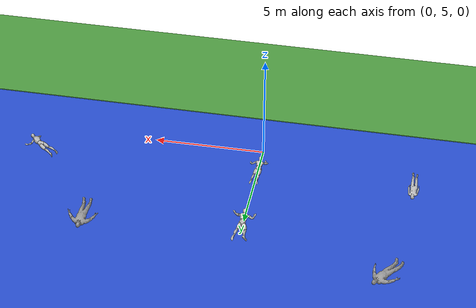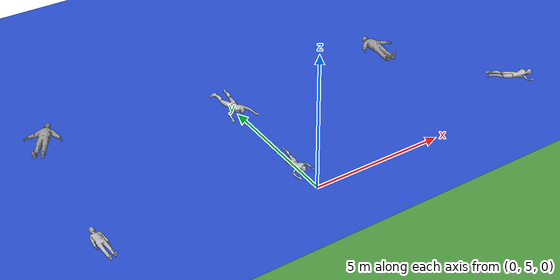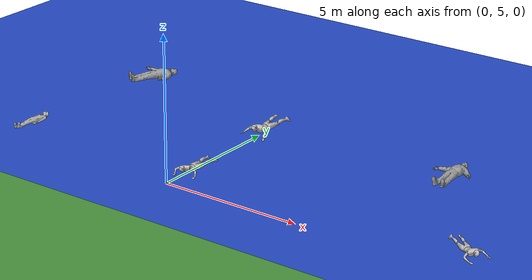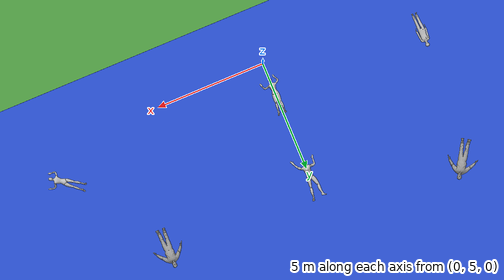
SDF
<?xml version="1.0" ?>
<sdf version="1.5">
  <world name="default">
    <gui>
      <camera name="camera">
        <pose>0 -21.555550 5.573201 0 0.169398 1.5708</pose>
      </camera>
    </gui>
    <scene>
      <grid>false</grid>
    </scene>
    <!-- A global light source -->
    <include>
      <uri>model://sun</uri>
    </include>

    <model name="water_level">
    <pose>0 52.5 0 0 0 0</pose>
    <link name="link">
      <visual name="visual">
        <geometry>
          <plane>
            <normal>0 0 1</normal>
            <size>100 100</size>
          </plane>
        </geometry>
        <material>
          <script>
            <name>Gazebo/BlueTransparent</name>
            <uri>file://media/materials/scripts/gazebo.material</uri>
          </script>
        </material>
      </visual>
    </link>
    <static>true</static>
    </model>

    <model name="grass_plane">
    <pose>0 -22.5 0 0 0 0</pose>
    <link name="link">
      <visual name="visual">
        <geometry>
          <plane>
            <normal>0 0 1</normal>
            <size>100 50</size>
          </plane>
        </geometry>
        <material>
          <script>
            <name>Gazebo/Grass</name>
            <uri>file://media/materials/scripts/gazebo.material</uri>
          </script>
        </material>
      </visual>
      <collision name="collision">
        <geometry>
          <plane>
            <normal>0 0 1</normal>
            <size>100 50</size>
          </plane>
        </geometry>
      </collision>
    </link>
    <static>true</static>
    </model>

    <physics name='default_physics' default='0' type='ode'>
      <gravity>0 0 -9.8066</gravity>
      <ode>
        <solver>
          <type>quick</type>
          <iters>10</iters>
          <sor>1.3</sor>
          <use_dynamic_moi_rescaling>0</use_dynamic_moi_rescaling>
        </solver>
        <constraints>
          <cfm>0</cfm>
          <erp>0.2</erp>
          <contact_max_correcting_vel>100</contact_max_correcting_vel>
          <contact_surface_layer>0.001</contact_surface_layer>
        </constraints>
      </ode>
      <max_step_size>0.004</max_step_size>
      <real_time_factor>1</real_time_factor>
      <real_time_update_rate>250</real_time_update_rate>
      <magnetic_field>6.0e-6 2.3e-5 -4.2e-5</magnetic_field>
    </physics>

    <include>
      <name>victim1</name>
      <pose>-7 5.5 0.1 -1.57 0 0</pose>
      <uri>model://OpScrubs</uri>
      <plugin name="victim" filename="libvictim.so">
        <drowningTime>70000</drowningTime>
      </plugin>
    </include>

    <include>
      <name>victim2</name>
      <pose>0 6.5 0 0 0 0</pose>
      <uri>model://Survivor Female</uri>
      <plugin name="victim" filename="libvictim.so">
        <drowningTime>45000</drowningTime>
      </plugin>
    </include>

    <include>
      <name>victim3</name>
      <pose>10 6.5 0 0 0 0.97</pose>
      <uri>model://Survivor Female</uri>
      <plugin name="victim" filename="libvictim.so">
        <drowningTime>48000</drowningTime>
      </plugin>
    </include>

    <include>
      <name>victim4</name>
      <pose>-7 11.5 0.1 -1.57 0 -0.57</pose>
      <uri>model://rescue_randy</uri>
      <plugin name="victim" filename="libvictim.so">
        <drowningTime>80000</drowningTime>
      </plugin>
    </include>

    <include>
      <name>victim5</name>
      <pose>0 10.5 0.1 0 0 0</pose>
      <uri>model://Survivor Male</uri>
      <plugin name="victim" filename="libvictim.so">
        <drowningTime>60000</drowningTime>
      </plugin>
    </include>

    <include>
      <name>victim6</name>
      <pose>7 10 0.1 -1.57 0 0</pose>
      <uri>model://rescue_randy</uri>
      <plugin name="victim" filename="libvictim.so">
        <drowningTime>85000</drowningTime>
      </plugin>
    </include>

    <plugin name="spawn_buoy" filename="libspawn_buoy.so"/>
  </world>
</sdf>

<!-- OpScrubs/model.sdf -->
<sdf version="1.6">
  <model name="OpScrubs">
   <static>true</static>
    <link name="body">
      <pose>0 0 0 0 0 0</pose>

      <visual name="visual">
        <geometry>
          <mesh>
            <uri>model://OpScrubs/meshes/OpScrubs.obj</uri>
          </mesh>
        </geometry>
      </visual>

      <collision name="collision">
        <geometry>
          <mesh>
            <uri>model://OpScrubs/meshes/OpScrubs_Col.obj</uri>
          </mesh>
        </geometry>
      </collision>

    </link>
  </model>
</sdf>

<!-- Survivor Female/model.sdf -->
<sdf version='1.6'>
  <model name='Survivor Female'>
    <static>true</static>
    <link name='link'>
      <collision name='collision'>
        <geometry>
          <mesh>
            <uri>model://Survivor Female/meshes/Survivor Female.dae</uri>
          </mesh>
        </geometry>
      </collision>
      <visual name='visual'>
        <geometry>
          <mesh>
            <uri>model://Survivor Female/meshes/Survivor Female.dae</uri>
          </mesh>
        </geometry>
      </visual>
    </link>
  </model>
</sdf>

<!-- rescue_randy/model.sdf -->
<sdf version="1.6">
  <model name="rescue_randy">
    <static>true</static>
    <link name="link">
      <collision name="collision">
        <geometry>
          <mesh>
            <uri>model://rescue_randy/meshes/rescue_randy.dae</uri>
          </mesh>
        </geometry>
      </collision>
      <visual name="visual">
        <geometry>
          <mesh>
            <uri>model://rescue_randy/meshes/rescue_randy.dae</uri>
          </mesh>
        </geometry>
        <material>
          <specular>1.0 1.0 1.0</specular>
          <pbr>
            <metal>
              <albedo_map>model://rescue_randy/materials/textures/rescue_randy_albedo.png</albedo_map>
              <normal_map>model://rescue_randy/materials/textures/rescue_randy_normal.png</normal_map>
              <metalness_map>model://rescue_randy/materials/textures/rescue_randy_metalness.png</metalness_map>
              <roughness_map>model://rescue_randy/materials/textures/rescue_randy_roughness.png</roughness_map>
            </metal>
          </pbr>
          <!-- fallback to classic if no PBR support-->
          <script>
            <uri>model://rescue_randy/materials/scripts</uri>
            <uri>model://rescue_randy/materials/textures</uri>
            <name>RescueRandy/Diffuse</name>
          </script>
        </material>
      </visual>
    </link>
  </model>
</sdf>

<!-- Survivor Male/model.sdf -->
<sdf version='1.6'>
  <model name='Survivor Male'>
    <static>true</static>
    <link name='link'>
      <pose>0 0 -0.837 0 0 0</pose>
      <collision name='collision'>
        <geometry>
          <mesh>
            <uri>model://Survivor Male/meshes/Survivor Male.dae</uri>
          </mesh>
        </geometry>
      </collision>
      <visual name='visual'>
        <geometry>
          <mesh>
            <uri>model://Survivor Male/meshes/Survivor Male.dae</uri>
          </mesh>
        </geometry>
      </visual>
    </link>
  </model>
</sdf>
